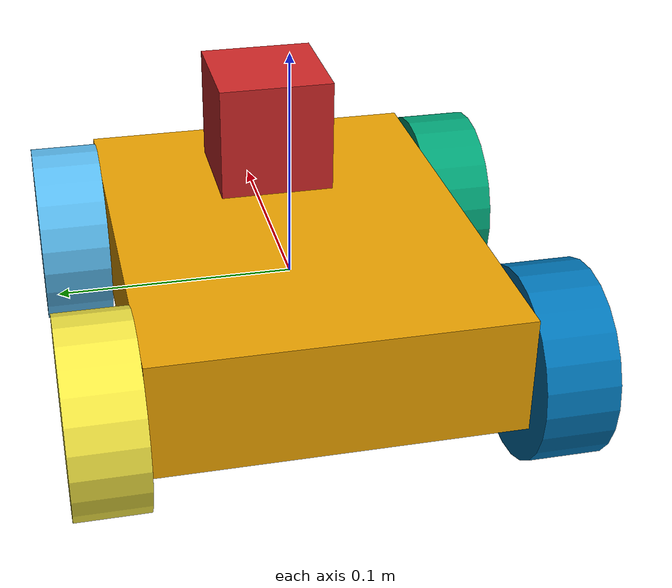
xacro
<?xml version='1.0'?>

<robot name="robot" xmlns:xacro="http://www.ros.org/wiki/xacro">

  <xacro:property name="chassis_width" value="0.15"/>
  <xacro:property name="chassis_length" value="0.2"/>
  <xacro:property name="chassis_height" value="0.05"/>
  <xacro:property name="chassis_mass" value="0.5"/>

  <xacro:property name="wheel_radius" value="0.04"/>
  <xacro:property name="wheel_width" value="0.03"/>
  <xacro:property name="wheel_mass" value="0.15"/>

  <xacro:property name="castor_radius" value="0.03"/>
  <xacro:property name="castor_mass" value="0.3"/>

  <xacro:property name="camera_link" value="0.05" /> <!-- Size of square 'camera' box -->

  <xacro:include filename="$(find enph353_ros_lab)/urdf/macros.xacro" />

  <link name='chassis'>

    <xacro:box_inertial name="chassis" m="${chassis_mass}" x="${chassis_length}" y="${chassis_width}" z="${chassis_height}"/>

    <collision name='chassis_collision'>
      <origin xyz="0 0 0" rpy=" 0 0 0"/>
      <geometry>
        <box size="${chassis_length} ${chassis_width} ${chassis_height}"/>
      </geometry>
    </collision>

    <visual name='chassis_visual'>
      <origin xyz="0 0 0" rpy=" 0 0 0"/>
      <geometry>
        <box size="${chassis_length} ${chassis_width} ${chassis_height}"/>
      </geometry>
    </visual>

  </link>

  <link name="topleftwheel">
    <xacro:cylinder_inertial name="topleftwheel" m="${wheel_mass}" r="${wheel_radius}" h="${wheel_width}"/>

    <xacro:wheel_collision radius="${wheel_radius}" width="${wheel_width}" x="0" y="0" z="0" r="1.570595" p="0" yaw="0"/>

    <xacro:wheel_visual x="0" y="0" z="0" r="1.570595" p="0" yaw="0" radius="${wheel_radius}" width="${wheel_width}"/>
  </link>

  <link name="toprightwheel">
    <xacro:cylinder_inertial name="toprightwheel" m="${wheel_mass}" r="${wheel_radius}" h="${wheel_width}"/>

    <xacro:wheel_collision radius="${wheel_radius}" width="${wheel_width}" x="0" y="0" z="0" r="1.570595" p="0" yaw="0"/>

    <xacro:wheel_visual x="0" y="0" z="0" r="1.570595" p="0" yaw="0" radius="${wheel_radius}" width="${wheel_width}"/>
  </link>

  <link name="bottomleftwheel">
    <xacro:cylinder_inertial name="bottomleftwheel" m="${wheel_mass}" r="${wheel_radius}" h="${wheel_width}"/>

    <xacro:wheel_collision radius="${wheel_radius}" width="${wheel_width}" x="0" y="0" z="0" r="1.570595" p="0" yaw="0"/>

    <xacro:wheel_visual x="0" y="0" z="0" r="1.570595" p="0" yaw="0" radius="${wheel_radius}" width="${wheel_width}"/>
  </link>

  <link name="bottomrightwheel">
    <xacro:cylinder_inertial name="bottomrightwheel" m="${wheel_mass}" r="${wheel_radius}" h="${wheel_width}"/>

    <xacro:wheel_collision radius="${wheel_radius}" width="${wheel_width}" x="0" y="0" z="0" r="1.570595" p="0" yaw="0"/>

    <xacro:wheel_visual x="0" y="0" z="0" r="1.570595" p="0" yaw="0" radius="${wheel_radius}" width="${wheel_width}"/>
  </link>

  <joint name="topleftwheeljoint" type ="continuous">
    <xacro:wheel_joint x="0.075" y="0.09" z="-0.01" r="0" p="0" yaw="0" parentlink="chassis" childlink="topleftwheel"/>
    <axis xyz="0 1 0"/>
  </joint>

  <joint name="toprightwheeljoint" type ="continuous">
    <xacro:wheel_joint x="0.075" y="-0.09" z="-0.01" r="0" p="0" yaw="0" parentlink="chassis" childlink="toprightwheel"/>
    <axis xyz="0 1 0"/>
  </joint>

  <joint name="bottomleftwheeljoint" type ="continuous">
    <xacro:wheel_joint x="-0.075" y="0.09" z="-0.01" r="0" p="0" yaw="0" parentlink="chassis" childlink="bottomleftwheel"/>
    <axis xyz="0 1 0"/>
  </joint>

  <joint name="bottomrightwheeljoint" type ="continuous">
    <xacro:wheel_joint x="-0.075" y="-0.09" z="-0.01" r="0" p="0" yaw="0" parentlink="chassis" childlink="bottomrightwheel"/>
    <axis xyz="0 1 0"/>
  </joint>

  <joint name="camera_joint" type="fixed">
    <axis xyz="0 1 0" />
    <origin xyz="${camera_link} 0 0.05" rpy="0 0 0"/>
    <parent link="chassis"/>
    <child link="camera_link"/>
  </joint>

  <!-- Camera -->
  <link name="camera_link">
    <collision>
      <origin xyz="0 0 0" rpy="0 0 0"/>
      <geometry>
    <box size="${camera_link} ${camera_link} ${camera_link}"/>
      </geometry>
    </collision>

    <visual>
      <origin xyz="0 0 0" rpy="0 0 0"/>
      <geometry>
    <box size="${camera_link} ${camera_link} ${camera_link}"/>
      </geometry>
      <material name="red"/>
    </visual>

    <inertial>
      <mass value="1e-5" />
      <origin xyz="0 0 0" rpy="0 0 0"/>
      <inertia ixx="1e-6" ixy="0" ixz="0" iyy="1e-6" iyz="0" izz="1e-6" />
    </inertial>
  </link>

  <gazebo>
        <plugin name="skid_steer_drive_controller" filename="libgazebo_ros_skid_steer_drive.so">
	     <updateRate>20.0</updateRate>
	     <robotNamespace>/</robotNamespace>
	     <leftFrontJoint>topleftwheeljoint</leftFrontJoint>
	     <rightFrontJoint>toprightwheeljoint</rightFrontJoint>
	     <leftRearJoint>bottomleftwheeljoint</leftRearJoint>
	     <rightRearJoint>bottomrightwheeljoint</rightRearJoint>
	     <wheelSeparation>0.18</wheelSeparation>
	     <wheelDiameter>0.08</wheelDiameter>
	     <robotBaseFrame>base_link</robotBaseFrame>
	     <torque>20</torque>
	     <topicName>cmd_vel</topicName>
	     <broadcastTF>false</broadcastTF>
        </plugin>
  </gazebo>

<!-- camera -->
<gazebo reference="camera_link">
  <sensor type="camera" name="camera1">
    <update_rate>30.0</update_rate>
    <camera name="head">
      <horizontal_fov>1.3962634</horizontal_fov>
      <image>
        <width>800</width>
        <height>800</height>
        <format>R8G8B8</format>
      </image>
      <clip>
        <near>0.02</near>
        <far>300</far>
      </clip>
      <noise>
        <type>gaussian</type>
        <!-- Noise is sampled independently per pixel on each frame.
              That pixel's noise value is added to each of its color
              channels, which at that point lie in the range [0,1]. -->
        <mean>0.0</mean>
        <stddev>0.007</stddev>
      </noise>
    </camera>
    <plugin name="camera_controller" filename="libgazebo_ros_camera.so">
      <alwaysOn>true</alwaysOn>
      <updateRate>0.0</updateRate>
      <cameraName>rrbot/camera1</cameraName>
      <imageTopicName>image_raw</imageTopicName>
      <cameraInfoTopicName>camera_info</cameraInfoTopicName>
      <frameName>camera_link</frameName>
      <hackBaseline>0.07</hackBaseline>
      <distortionK1>0.0</distortionK1>
      <distortionK2>0.0</distortionK2>
      <distortionK3>0.0</distortionK3>
      <distortionT1>0.0</distortionT1>
      <distortionT2>0.0</distortionT2>
    </plugin>
  </sensor>
</gazebo>

</robot>

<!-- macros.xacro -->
<robot>
  <macro name="cylinder_inertial" params="name m r h">
    <inertial name="${name}_intertial">
      <mass value="${m}"/>
      <inertia  ixx="${m*(3*r*r+h*h)/12}" ixy = "0" ixz = "0"
        iyy="${m*(3*r*r+h*h)/12}" iyz = "0"
        izz="${m*r*r/2}"/>
    </inertial>
  </macro>

  <macro name="box_inertial" params="name m x y z">
    <inertial name="${name}_inertial">
      <mass value="${m}"/>
      <inertia  ixx="${m*(y*y+z*z)/12}" ixy = "0" ixz = "0"
        iyy="${m*(x*x+y*y)/12}" iyz = "0"
        izz="${m*(x*x+z*z)/12}"/>
    </inertial>
  </macro>

  <macro name="sphere_inertial" params="name m r">
    <inertial name="${name}_inertial">
      <mass value="${m}"/>
      <inertia  ixx="${2*m*r*r/5}" ixy = "0" ixz = "0"
        iyy="${2*m*r*r/5}" iyz = "0"
        izz="${2*m*r*r/5}"/>
    </inertial>
  </macro>

  <macro name="castor_collision" params="radius x y z r p yaw">
    <collision name="castor_collision">
      <origin xyz="${x} ${y} ${z}" rpy="${r} ${p} ${yaw}"/>
      <geometry>
        <sphere radius="${radius}" />
      </geometry>
    </collision>
  </macro>

  <macro name="castor_visual"  params="x y z r p yaw radius">
    <visual name="castor_visual">
      <origin xyz="${x} ${y} ${z}" rpy=" ${r} ${p} ${yaw}"/>
       <geometry>
        <sphere radius="${radius}" />
      </geometry>
    </visual>
  </macro>

  <macro name="castor_joint" params="x y z r p yaw parentlink childlink">
    <origin xyz="${x} ${y} ${z}" rpy="${r} ${p} ${yaw}"/>
    <parent link="${parentlink}"/>
    <child link="${childlink}"/>
  </macro>

  <macro name="wheel_collision" params="radius width x y z r p yaw">
    <collision name="wheel_collision">
      <origin xyz="${x} ${y} ${z}" rpy="${r} ${p} ${yaw}"/>
      <geometry>
        <cylinder radius="${radius}" length=" ${width}"/>
      </geometry>
    </collision>
  </macro>

  <macro name="wheel_visual"  params="x y z r p yaw radius width">
    <visual name="wheel_visual">
      <origin xyz="${x} ${y} ${z}" rpy=" ${r} ${p} ${yaw}"/>
       <geometry>
        <cylinder radius="${radius}" length=" ${width}"/>
      </geometry>
    </visual>
  </macro>

  <macro name="wheel_joint" params="x y z r p yaw parentlink childlink">
    <origin xyz="${x} ${y} ${z}" rpy="${r} ${p} ${yaw}"/>
    <parent link="${parentlink}"/>
    <child link="${childlink}"/>
  </macro>

</robot>
